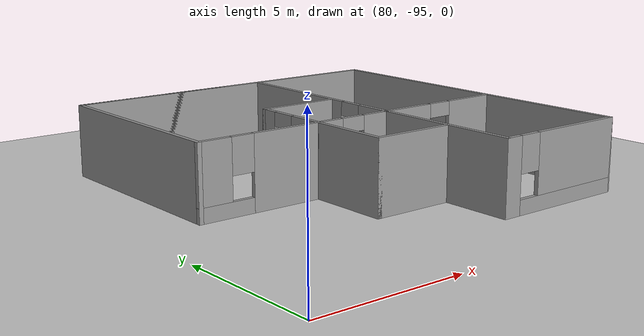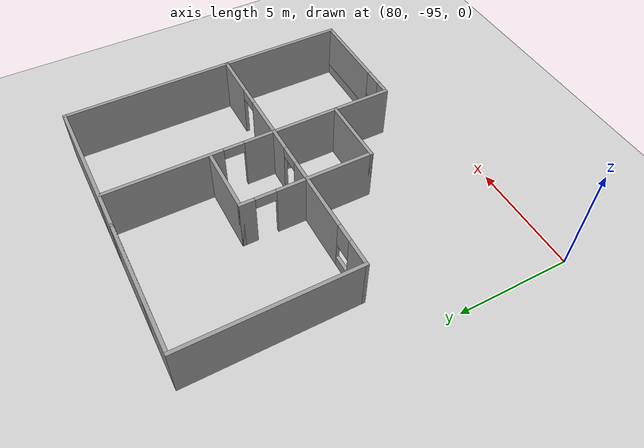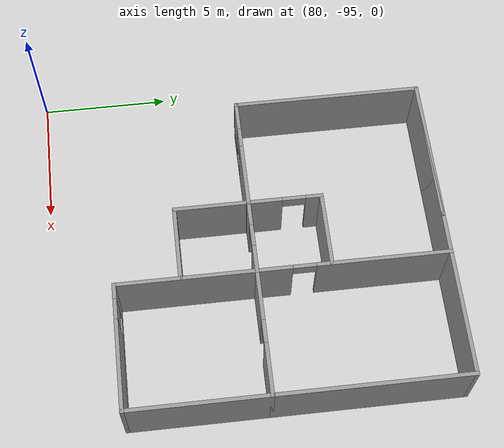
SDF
<sdf version="1.6">
 <world name="default">
  <model name="ground_plane">
   <static>1</static>
   <link name="link">
    <collision name="collision">
     <geometry><plane><normal>0 0 1</normal><size>100 100</size></plane></geometry>
     <surface>
      <contact><collide_bitmask>65535</collide_bitmask></contact>
      <friction><ode><mu>100</mu><mu2>50</mu2></ode></friction>
     </surface>
    </collision>
    <visual name="visual">
     <cast_shadows>0</cast_shadows>
     <geometry><plane><normal>0 0 1</normal><size>100 100</size></plane></geometry>
     <material>
      <script><uri>file://media/materials/scripts/gazebo.material</uri><name>Gazebo/Grey</name></script>
     </material>
    </visual>
   </link>
  </model>
  <model name="HouseIslam">
   <pose>88.2302 -86.082 0 0 -0 0</pose>
   <link name="Wall_11">
    <collision name="Wall_11_Collision">
     <geometry><box><size>7.5 0.15 2.5</size></box></geometry>
     <pose>0 0 1.25 0 -0 0</pose>
    </collision>
    <visual name="Wall_11_Visual">
     <pose>0 0 1.25 0 -0 0</pose>
     <geometry><box><size>7.5 0.15 2.5</size></box></geometry>
     <material>
      <script><uri>file://media/materials/scripts/gazebo.material</uri><name>Gazebo/Grey</name></script>
      <ambient>1 1 1 1</ambient>
     </material>
     <meta><layer>0</layer></meta>
    </visual>
    <pose>-6.1 2.675 0 0 -0 1.5708</pose>
   </link>
   <link name="Wall_13">
    <pose>3.675 -1 0 0 -0 0</pose>
    <visual name="Wall_13_Visual_0">
     <pose>-1.4775 0 1.25 0 -0 0</pose>
     <geometry><box><size>2.045 0.15 2.5</size></box></geometry>
     <material>
      <script><uri>file://media/materials/scripts/gazebo.material</uri><name>Gazebo/Grey</name></script>
      <ambient>1 1 1 1</ambient>
     </material>
     <meta><layer>0</layer></meta>
    </visual>
    <collision name="Wall_13_Collision_0">
     <geometry><box><size>2.045 0.15 2.5</size></box></geometry>
     <pose>-1.4775 0 1.25 0 -0 0</pose>
    </collision>
    <visual name="Wall_13_Visual_1">
     <pose>1.4725 0 1.25 0 -0 0</pose>
     <geometry><box><size>2.055 0.15 2.5</size></box></geometry>
     <material>
      <script><uri>file://media/materials/scripts/gazebo.material</uri><name>Gazebo/Grey</name></script>
      <ambient>1 1 1 1</ambient>
     </material>
     <meta><layer>0</layer></meta>
    </visual>
    <collision name="Wall_13_Collision_1">
     <geometry><box><size>2.055 0.15 2.5</size></box></geometry>
     <pose>1.4725 0 1.25 0 -0 0</pose>
    </collision>
    <visual name="Wall_13_Visual_2">
     <pose>-0.005 0 2.25 0 -0 0</pose>
     <geometry><box><size>0.9 0.15 0.5</size></box></geometry>
     <material>
      <script><uri>file://media/materials/scripts/gazebo.material</uri><name>Gazebo/Grey</name></script>
      <ambient>1 1 1 1</ambient>
     </material>
     <meta><layer>0</layer></meta>
    </visual>
    <collision name="Wall_13_Collision_2">
     <geometry><box><size>0.9 0.15 0.5</size></box></geometry>
     <pose>-0.005 0 2.25 0 -0 0</pose>
    </collision>
   </link>
   <link name="Wall_15">
    <collision name="Wall_15_Collision">
     <geometry><box><size>7.5 0.15 2.5</size></box></geometry>
     <pose>0 0 1.25 0 -0 0</pose>
    </collision>
    <visual name="Wall_15_Visual">
     <pose>0 0 1.25 0 -0 0</pose>
     <geometry><box><size>7.5 0.15 2.5</size></box></geometry>
     <material>
      <script><uri>file://media/materials/scripts/gazebo.material</uri><name>Gazebo/Grey</name></script>
      <ambient>1 1 1 1</ambient>
     </material>
     <meta><layer>0</layer></meta>
    </visual>
    <pose>6.1 2.675 0 0 -0 1.5708</pose>
   </link>
   <link name="Wall_17">
    <collision name="Wall_17_Collision">
     <geometry><box><size>5 0.15 2.5</size></box></geometry>
     <pose>0 0 1.25 0 -0 0</pose>
    </collision>
    <visual name="Wall_17_Visual">
     <pose>0 0 1.25 0 -0 0</pose>
     <geometry><box><size>5 0.15 2.5</size></box></geometry>
     <material>
      <script><uri>file://media/materials/scripts/gazebo.material</uri><name>Gazebo/Grey</name></script>
      <ambient>1 1 1 1</ambient>
     </material>
     <meta><layer>0</layer></meta>
    </visual>
    <pose>3.675 6.35 0 0 -0 3.14159</pose>
   </link>
   <link name="Wall_19">
    <collision name="Wall_19_Collision">
     <geometry><box><size>5.5 0.15 2.5</size></box></geometry>
     <pose>0 0 1.25 0 -0 0</pose>
    </collision>
    <visual name="Wall_19_Visual">
     <pose>0 0 1.25 0 -0 0</pose>
     <geometry><box><size>5.5 0.15 2.5</size></box></geometry>
     <material>
      <script><uri>file://media/materials/scripts/gazebo.material</uri><name>Gazebo/Grey</name></script>
      <ambient>1 1 1 1</ambient>
     </material>
     <meta><layer>0</layer></meta>
    </visual>
    <pose>1.25 -3.675 0 0 -0 -1.5708</pose>
   </link>
   <link name="Wall_21">
    <collision name="Wall_21_Collision">
     <geometry><box><size>5.5 0.15 2.5</size></box></geometry>
     <pose>0 0 1.25 0 -0 0</pose>
    </collision>
    <visual name="Wall_21_Visual">
     <pose>0 0 1.25 0 -0 0</pose>
     <geometry><box><size>5.5 0.15 2.5</size></box></geometry>
     <material>
      <script><uri>file://media/materials/scripts/gazebo.material</uri><name>Gazebo/Grey</name></script>
      <ambient>1 1 1 1</ambient>
     </material>
     <meta><layer>0</layer></meta>
    </visual>
    <pose>6.1 -3.675 0 0 -0 -1.5708</pose>
   </link>
   <link name="Wall_23">
    <pose>3.675 -6.35 0 0 -0 0</pose>
    <visual name="Wall_23_Visual_0">
     <pose>-2.1825 0 1.25 0 -0 0</pose>
     <geometry><box><size>0.635 0.15 2.5</size></box></geometry>
     <material>
      <script><uri>file://media/materials/scripts/gazebo.material</uri><name>Gazebo/Grey</name></script>
      <ambient>1 1 1 1</ambient>
     </material>
     <meta><layer>0</layer></meta>
    </visual>
    <collision name="Wall_23_Collision_0">
     <geometry><box><size>0.635 0.15 2.5</size></box></geometry>
     <pose>-2.1825 0 1.25 0 -0 0</pose>
    </collision>
    <visual name="Wall_23_Visual_1">
     <pose>0.3175 0 0.25 0 -0 0</pose>
     <geometry><box><size>4.365 0.15 0.5</size></box></geometry>
     <material>
      <script><uri>file://media/materials/scripts/gazebo.material</uri><name>Gazebo/Grey</name></script>
      <ambient>1 1 1 1</ambient>
     </material>
     <meta><layer>0</layer></meta>
    </visual>
    <collision name="Wall_23_Collision_1">
     <geometry><box><size>4.365 0.15 0.5</size></box></geometry>
     <pose>0.3175 0 0.25 0 -0 0</pose>
    </collision>
    <visual name="Wall_23_Visual_2">
     <pose>0.7175 0 1.5 0 -0 0</pose>
     <geometry><box><size>3.565 0.15 2</size></box></geometry>
     <material>
      <script><uri>file://media/materials/scripts/gazebo.material</uri><name>Gazebo/Grey</name></script>
      <ambient>1 1 1 1</ambient>
     </material>
     <meta><layer>0</layer></meta>
    </visual>
    <collision name="Wall_23_Collision_2">
     <geometry><box><size>3.565 0.15 2</size></box></geometry>
     <pose>0.7175 0 1.5 0 -0 0</pose>
    </collision>
    <visual name="Wall_23_Visual_3">
     <pose>-1.465 0 1.9 0 -0 0</pose>
     <geometry><box><size>0.8 0.15 1.2</size></box></geometry>
     <material>
      <script><uri>file://media/materials/scripts/gazebo.material</uri><name>Gazebo/Grey</name></script>
      <ambient>1 1 1 1</ambient>
     </material>
     <meta><layer>0</layer></meta>
    </visual>
    <collision name="Wall_23_Collision_3">
     <geometry><box><size>0.8 0.15 1.2</size></box></geometry>
     <pose>-1.465 0 1.9 0 -0 0</pose>
    </collision>
   </link>
   <link name="Wall_28">
    <pose>-1.64 0.404999 0 0 -0 1.5708</pose>
    <visual name="Wall_28_Visual_0">
     <pose>-0.7925 0 1.25 0 -0 0</pose>
     <geometry><box><size>1.415 0.15 2.5</size></box></geometry>
     <material>
      <script><uri>file://media/materials/scripts/gazebo.material</uri><name>Gazebo/Grey</name></script>
      <ambient>1 1 1 1</ambient>
     </material>
     <meta><layer>0</layer></meta>
    </visual>
    <collision name="Wall_28_Collision_0">
     <geometry><box><size>1.415 0.15 2.5</size></box></geometry>
     <pose>-0.7925 0 1.25 0 -0 0</pose>
    </collision>
    <visual name="Wall_28_Visual_1">
     <pose>1.1575 0 1.25 0 -0 0</pose>
     <geometry><box><size>0.685 0.15 2.5</size></box></geometry>
     <material>
      <script><uri>file://media/materials/scripts/gazebo.material</uri><name>Gazebo/Grey</name></script>
      <ambient>1 1 1 1</ambient>
     </material>
     <meta><layer>0</layer></meta>
    </visual>
    <collision name="Wall_28_Collision_1">
     <geometry><box><size>0.685 0.15 2.5</size></box></geometry>
     <pose>1.1575 0 1.25 0 -0 0</pose>
    </collision>
    <visual name="Wall_28_Visual_2">
     <pose>0.365 0 2.25 0 -0 0</pose>
     <geometry><box><size>0.9 0.15 0.5</size></box></geometry>
     <material>
      <script><uri>file://media/materials/scripts/gazebo.material</uri><name>Gazebo/Grey</name></script>
      <ambient>1 1 1 1</ambient>
     </material>
     <meta><layer>0</layer></meta>
    </visual>
    <collision name="Wall_28_Collision_2">
     <geometry><box><size>0.9 0.15 0.5</size></box></geometry>
     <pose>0.365 0 2.25 0 -0 0</pose>
    </collision>
   </link>
   <link name="Wall_3">
    <collision name="Wall_3_Collision">
     <geometry><box><size>7.5 0.15 2.5</size></box></geometry>
     <pose>0 0 1.25 0 -0 0</pose>
    </collision>
    <visual name="Wall_3_Visual">
     <pose>0 0 1.25 0 -0 0</pose>
     <geometry><box><size>7.5 0.15 2.5</size></box></geometry>
     <material>
      <script><uri>file://media/materials/scripts/gazebo.material</uri><name>Gazebo/Grey</name></script>
      <ambient>1 1 1 1</ambient>
     </material>
     <meta><layer>0</layer></meta>
    </visual>
    <pose>-2.425 6.35 0 0 -0 3.14159</pose>
   </link>
   <link name="Wall_30">
    <collision name="Wall_30_Collision">
     <geometry><box><size>3 0.15 2.5</size></box></geometry>
     <pose>0 0 1.25 0 -0 0</pose>
    </collision>
    <visual name="Wall_30_Visual">
     <pose>0 0 1.25 0 -0 0</pose>
     <geometry><box><size>3 0.15 2.5</size></box></geometry>
     <material>
      <script><uri>file://media/materials/scripts/gazebo.material</uri><name>Gazebo/Grey</name></script>
      <ambient>1 1 1 1</ambient>
     </material>
     <meta><layer>0</layer></meta>
    </visual>
    <pose>-0.215 1.83 0 0 -0 0</pose>
   </link>
   <link name="Wall_32">
    <collision name="Wall_32_Collision">
     <geometry><box><size>3 0.15 2.5</size></box></geometry>
     <pose>0 0 1.25 0 -0 0</pose>
    </collision>
    <visual name="Wall_32_Visual">
     <pose>0 0 1.25 0 -0 0</pose>
     <geometry><box><size>3 0.15 2.5</size></box></geometry>
     <material>
      <script><uri>file://media/materials/scripts/gazebo.material</uri><name>Gazebo/Grey</name></script>
      <ambient>1 1 1 1</ambient>
     </material>
     <meta><layer>0</layer></meta>
    </visual>
    <pose>-1.64 -2.445 0 0 -0 -1.5708</pose>
   </link>
   <link name="Wall_33">
    <collision name="Wall_33_Collision">
     <geometry><box><size>3 0.15 2.5</size></box></geometry>
     <pose>0 0 1.25 0 -0 0</pose>
    </collision>
    <visual name="Wall_33_Visual">
     <pose>0 0 1.25 0 -0 0</pose>
     <geometry><box><size>3 0.15 2.5</size></box></geometry>
     <material>
      <script><uri>file://media/materials/scripts/gazebo.material</uri><name>Gazebo/Grey</name></script>
      <ambient>1 1 1 1</ambient>
     </material>
     <meta><layer>0</layer></meta>
    </visual>
    <pose>-0.215 -3.87 0 0 -0 0</pose>
   </link>
   <link name="Wall_4">
    <collision name="Wall_4_Collision">
     <geometry><box><size>5.91 0.15 2.5</size></box></geometry>
     <pose>0 0 1.25 0 -0 0</pose>
    </collision>
    <visual name="Wall_4_Visual">
     <pose>0 0 1.25 0 -0 0</pose>
     <geometry><box><size>5.91 0.15 2.5</size></box></geometry>
     <material>
      <script><uri>file://media/materials/scripts/gazebo.material</uri><name>Gazebo/Grey</name></script>
      <ambient>1 1 1 1</ambient>
     </material>
     <meta><layer>0</layer></meta>
    </visual>
    <pose>-3.22 6.35 0 0 -0 0</pose>
   </link>
   <link name="Wall_5">
    <collision name="Wall_5_Collision">
     <geometry><box><size>0.16 0.15 2.5</size></box></geometry>
     <pose>0 0 1.25 0 -0 0</pose>
    </collision>
    <visual name="Wall_5_Visual">
     <pose>0 0 1.25 0 -0 0</pose>
     <geometry><box><size>0.16 0.15 2.5</size></box></geometry>
     <material>
      <script><uri>file://media/materials/scripts/gazebo.material</uri><name>Gazebo/Grey</name></script>
      <ambient>1 1 1 1</ambient>
     </material>
     <meta><layer>0</layer></meta>
    </visual>
    <pose>-0.335 6.35 0 0 -0 0</pose>
   </link>
   <link name="Wall_7">
    <pose>1.25 2.675 0 0 -0 -1.5708</pose>
    <visual name="Wall_7_Visual_0">
     <pose>-1.1625 0 1.25 0 -0 0</pose>
     <geometry><box><size>5.175 0.15 2.5</size></box></geometry>
     <material>
      <script><uri>file://media/materials/scripts/gazebo.material</uri><name>Gazebo/Grey</name></script>
      <ambient>1 1 1 1</ambient>
     </material>
     <meta><layer>0</layer></meta>
    </visual>
    <collision name="Wall_7_Collision_0">
     <geometry><box><size>5.175 0.15 2.5</size></box></geometry>
     <pose>-1.1625 0 1.25 0 -0 0</pose>
    </collision>
    <visual name="Wall_7_Visual_1">
     <pose>3.0375 0 1.25 0 -0 0</pose>
     <geometry><box><size>1.425 0.15 2.5</size></box></geometry>
     <material>
      <script><uri>file://media/materials/scripts/gazebo.material</uri><name>Gazebo/Grey</name></script>
      <ambient>1 1 1 1</ambient>
     </material>
     <meta><layer>0</layer></meta>
    </visual>
    <collision name="Wall_7_Collision_1">
     <geometry><box><size>1.425 0.15 2.5</size></box></geometry>
     <pose>3.0375 0 1.25 0 -0 0</pose>
    </collision>
    <visual name="Wall_7_Visual_2">
     <pose>1.875 0 2.25 0 -0 0</pose>
     <geometry><box><size>0.9 0.15 0.5</size></box></geometry>
     <material>
      <script><uri>file://media/materials/scripts/gazebo.material</uri><name>Gazebo/Grey</name></script>
      <ambient>1 1 1 1</ambient>
     </material>
     <meta><layer>0</layer></meta>
    </visual>
    <collision name="Wall_7_Collision_2">
     <geometry><box><size>0.9 0.15 0.5</size></box></geometry>
     <pose>1.875 0 2.25 0 -0 0</pose>
    </collision>
   </link>
   <link name="Wall_9">
    <pose>-2.425 -1 0 0 -0 3.14159</pose>
    <visual name="Wall_9_Visual_0">
     <pose>-3.1925 0 1.25 0 -0 0</pose>
     <geometry><box><size>1.115 0.15 2.5</size></box></geometry>
     <material>
      <script><uri>file://media/materials/scripts/gazebo.material</uri><name>Gazebo/Grey</name></script>
      <ambient>1 1 1 1</ambient>
     </material>
     <meta><layer>0</layer></meta>
    </visual>
    <collision name="Wall_9_Collision_0">
     <geometry><box><size>1.115 0.15 2.5</size></box></geometry>
     <pose>-3.1925 0 1.25 0 -0 0</pose>
    </collision>
    <visual name="Wall_9_Visual_1">
     <pose>0.005 0 1.25 0 -0 0</pose>
     <geometry><box><size>3.48 0.15 2.5</size></box></geometry>
     <material>
      <script><uri>file://media/materials/scripts/gazebo.material</uri><name>Gazebo/Grey</name></script>
      <ambient>1 1 1 1</ambient>
     </material>
     <meta><layer>0</layer></meta>
    </visual>
    <collision name="Wall_9_Collision_1">
     <geometry><box><size>3.48 0.15 2.5</size></box></geometry>
     <pose>0.005 0 1.25 0 -0 0</pose>
    </collision>
    <visual name="Wall_9_Visual_2">
     <pose>2.7475 0 0.25 0 -0 0</pose>
     <geometry><box><size>2.005 0.15 0.5</size></box></geometry>
     <material>
      <script><uri>file://media/materials/scripts/gazebo.material</uri><name>Gazebo/Grey</name></script>
      <ambient>1 1 1 1</ambient>
     </material>
     <meta><layer>0</layer></meta>
    </visual>
    <collision name="Wall_9_Collision_2">
     <geometry><box><size>2.005 0.15 0.5</size></box></geometry>
     <pose>2.7475 0 0.25 0 -0 0</pose>
    </collision>
    <visual name="Wall_9_Visual_3">
     <pose>3.1475 0 1.5 0 -0 0</pose>
     <geometry><box><size>1.205 0.15 2</size></box></geometry>
     <material>
      <script><uri>file://media/materials/scripts/gazebo.material</uri><name>Gazebo/Grey</name></script>
      <ambient>1 1 1 1</ambient>
     </material>
     <meta><layer>0</layer></meta>
    </visual>
    <collision name="Wall_9_Collision_3">
     <geometry><box><size>1.205 0.15 2</size></box></geometry>
     <pose>3.1475 0 1.5 0 -0 0</pose>
    </collision>
    <visual name="Wall_9_Visual_4">
     <pose>2.145 0 1.9 0 -0 0</pose>
     <geometry><box><size>0.8 0.15 1.2</size></box></geometry>
     <material>
      <script><uri>file://media/materials/scripts/gazebo.material</uri><name>Gazebo/Grey</name></script>
      <ambient>1 1 1 1</ambient>
     </material>
     <meta><layer>0</layer></meta>
    </visual>
    <collision name="Wall_9_Collision_4">
     <geometry><box><size>0.8 0.15 1.2</size></box></geometry>
     <pose>2.145 0 1.9 0 -0 0</pose>
    </collision>
    <visual name="Wall_9_Visual_5">
     <pose>-2.185 0 2.25 0 -0 0</pose>
     <geometry><box><size>0.9 0.15 0.5</size></box></geometry>
     <material>
      <script><uri>file://media/materials/scripts/gazebo.material</uri><name>Gazebo/Grey</name></script>
      <ambient>1 1 1 1</ambient>
     </material>
     <meta><layer>0</layer></meta>
    </visual>
    <collision name="Wall_9_Collision_5">
     <geometry><box><size>0.9 0.15 0.5</size></box></geometry>
     <pose>-2.185 0 2.25 0 -0 0</pose>
    </collision>
   </link>
   <static>1</static>
  </model>
 </world>
</sdf>
